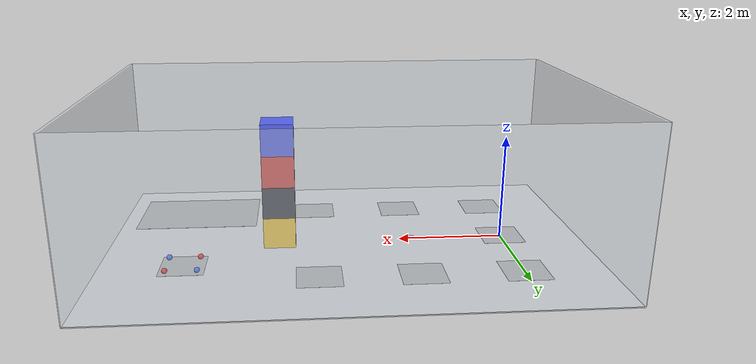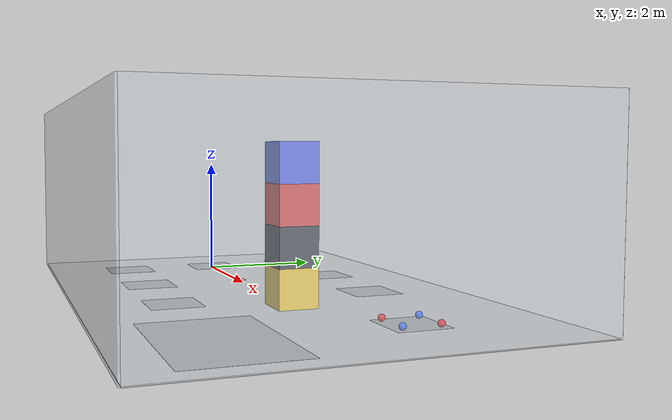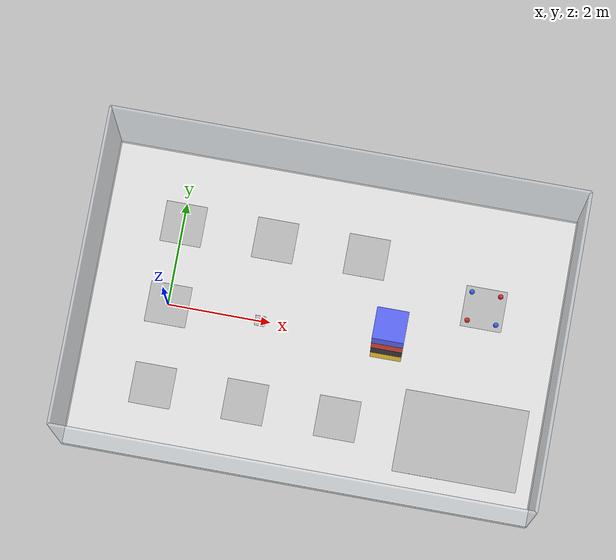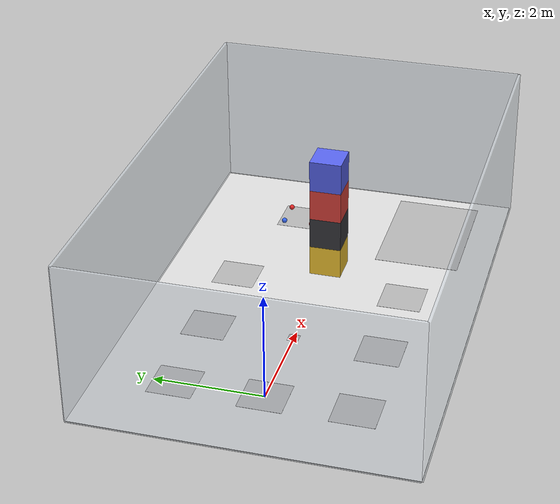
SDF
<?xml version='1.0'?>
<sdf version='1.7'>
  <model name='craic_2026_arena'>

    <model name='competition_floor'>
      <static>1</static>
      <pose>3 0 0.005 0 0 0</pose>
      <link name='link'>
        <collision name='collision'>
          <geometry>
            <box>
              <size>9 6 0.01</size>
            </box>
          </geometry>
          <surface>
            <contact><ode/></contact>
            <bounce/>
            <friction>
              <torsional><ode/></torsional>
              <ode/>
            </friction>
          </surface>
        </collision>
        <visual name='visual'>
          <geometry>
            <box>
              <size>9 6 0.01</size>
            </box>
          </geometry>
          <material>
            <ambient>0.88 0.88 0.88 1</ambient>
            <diffuse>0.88 0.88 0.88 1</diffuse>
            <specular>0.1 0.1 0.1 1</specular>
            <emissive>0 0 0 1</emissive>
          </material>
        </visual>
      </link>
    </model>
    <model name='north_wall'>
      <static>1</static>
      <pose>3 3 1.5 0 0 0</pose>
      <link name='link'>
        <collision name='collision'>
          <geometry>
            <box>
              <size>9 0.05 3</size>
            </box>
          </geometry>
          <surface>
            <contact><ode/></contact>
            <bounce/>
            <friction>
              <torsional><ode/></torsional>
              <ode/>
            </friction>
          </surface>
        </collision>
        <visual name='visual'>
          <geometry>
            <box>
              <size>9 0.05 3</size>
            </box>
          </geometry>
          <material>
            <ambient>0.8 0.85 0.9 0.35</ambient>
            <diffuse>0.8 0.85 0.9 0.35</diffuse>
            <specular>0.1 0.1 0.1 1</specular>
            <emissive>0 0 0 1</emissive>
          </material>
          <transparency>0.55</transparency>
        </visual>
      </link>
    </model>
    <model name='south_wall'>
      <static>1</static>
      <pose>3 -3 1.5 0 0 0</pose>
      <link name='link'>
        <collision name='collision'>
          <geometry>
            <box>
              <size>9 0.05 3</size>
            </box>
          </geometry>
          <surface>
            <contact><ode/></contact>
            <bounce/>
            <friction>
              <torsional><ode/></torsional>
              <ode/>
            </friction>
          </surface>
        </collision>
        <visual name='visual'>
          <geometry>
            <box>
              <size>9 0.05 3</size>
            </box>
          </geometry>
          <material>
            <ambient>0.8 0.85 0.9 0.35</ambient>
            <diffuse>0.8 0.85 0.9 0.35</diffuse>
            <specular>0.1 0.1 0.1 1</specular>
            <emissive>0 0 0 1</emissive>
          </material>
          <transparency>0.55</transparency>
        </visual>
      </link>
    </model>
    <model name='west_wall'>
      <static>1</static>
      <pose>-1.5 0 1.5 0 0 0</pose>
      <link name='link'>
        <collision name='collision'>
          <geometry>
            <box>
              <size>0.05 6 3</size>
            </box>
          </geometry>
          <surface>
            <contact><ode/></contact>
            <bounce/>
            <friction>
              <torsional><ode/></torsional>
              <ode/>
            </friction>
          </surface>
        </collision>
        <visual name='visual'>
          <geometry>
            <box>
              <size>0.05 6 3</size>
            </box>
          </geometry>
          <material>
            <ambient>0.8 0.85 0.9 0.35</ambient>
            <diffuse>0.8 0.85 0.9 0.35</diffuse>
            <specular>0.1 0.1 0.1 1</specular>
            <emissive>0 0 0 1</emissive>
          </material>
          <transparency>0.55</transparency>
        </visual>
      </link>
    </model>
    <model name='east_wall'>
      <static>1</static>
      <pose>7.5 0 1.5 0 0 0</pose>
      <link name='link'>
        <collision name='collision'>
          <geometry>
            <box>
              <size>0.05 6 3</size>
            </box>
          </geometry>
          <surface>
            <contact><ode/></contact>
            <bounce/>
            <friction>
              <torsional><ode/></torsional>
              <ode/>
            </friction>
          </surface>
        </collision>
        <visual name='visual'>
          <geometry>
            <box>
              <size>0.05 6 3</size>
            </box>
          </geometry>
          <material>
            <ambient>0.8 0.85 0.9 0.35</ambient>
            <diffuse>0.8 0.85 0.9 0.35</diffuse>
            <specular>0.1 0.1 0.1 1</specular>
            <emissive>0 0 0 1</emissive>
          </material>
          <transparency>0.55</transparency>
        </visual>
      </link>
    </model>
    <model name='obstacle_cube'>
      <static>1</static>
      <pose>4.3 0 0 0 0 0</pose>
      <link name='link'>

        <collision name='collision_0'>
          <pose>0 0 0.3 0 0 0</pose>
          <geometry>
            <box>
              <size>0.6 0.6 0.6</size>
            </box>
          </geometry>
          <surface>
            <contact><ode/></contact>
            <bounce/>
            <friction>
              <torsional><ode/></torsional>
              <ode/>
            </friction>
          </surface>
        </collision>
        <collision name='collision_1'>
          <pose>0 0 0.9 0 0 0</pose>
          <geometry>
            <box>
              <size>0.6 0.6 0.6</size>
            </box>
          </geometry>
          <surface>
            <contact><ode/></contact>
            <bounce/>
            <friction>
              <torsional><ode/></torsional>
              <ode/>
            </friction>
          </surface>
        </collision>
        <collision name='collision_2'>
          <pose>0 0 1.5 0 0 0</pose>
          <geometry>
            <box>
              <size>0.6 0.6 0.6</size>
            </box>
          </geometry>
          <surface>
            <contact><ode/></contact>
            <bounce/>
            <friction>
              <torsional><ode/></torsional>
              <ode/>
            </friction>
          </surface>
        </collision>
        <collision name='collision_3'>
          <pose>0 0 2.1 0 0 0</pose>
          <geometry>
            <box>
              <size>0.6 0.6 0.6</size>
            </box>
          </geometry>
          <surface>
            <contact><ode/></contact>
            <bounce/>
            <friction>
              <torsional><ode/></torsional>
              <ode/>
            </friction>
          </surface>
        </collision>
        <visual name='segment_0'>
          <pose>0 0 0.3 0 0 0</pose>
          <geometry>
            <box>
              <size>0.6 0.6 0.6</size>
            </box>
          </geometry>
          <material>
            <ambient>0.98 0.8 0.2 1</ambient>
            <diffuse>0.98 0.8 0.2 1</diffuse>
            <specular>0.18 0.18 0.18 1</specular>
            <emissive>0 0 0 1</emissive>
          </material>
        </visual>
        <visual name='segment_1'>
          <pose>0 0 0.9 0 0 0</pose>
          <geometry>
            <box>
              <size>0.6 0.6 0.6</size>
            </box>
          </geometry>
          <material>
            <ambient>0.22 0.22 0.24 1</ambient>
            <diffuse>0.22 0.22 0.24 1</diffuse>
            <specular>0.18 0.18 0.18 1</specular>
            <emissive>0 0 0 1</emissive>
          </material>
        </visual>
        <visual name='segment_2'>
          <pose>0 0 1.5 0 0 0</pose>
          <geometry>
            <box>
              <size>0.6 0.6 0.6</size>
            </box>
          </geometry>
          <material>
            <ambient>0.88 0.27 0.24 1</ambient>
            <diffuse>0.88 0.27 0.24 1</diffuse>
            <specular>0.18 0.18 0.18 1</specular>
            <emissive>0 0 0 1</emissive>
          </material>
        </visual>
        <visual name='segment_3'>
          <pose>0 0 2.1 0 0 0</pose>
          <geometry>
            <box>
              <size>0.6 0.6 0.6</size>
            </box>
          </geometry>
          <material>
            <ambient>0.35 0.4 0.95 1</ambient>
            <diffuse>0.35 0.4 0.95 1</diffuse>
            <specular>0.18 0.18 0.18 1</specular>
            <emissive>0 0 0 1</emissive>
          </material>
        </visual>
      </link>
    </model>

    <link name='ring_movement_zone'>
      <pose>6 -1.6 0 0 0 0</pose>
      <visual name='visual'>
        <pose>0 0 0.021 0 0 0</pose>
        <geometry>
          <plane>
            <normal>0 0 1</normal>
            <size>2.4 1.6</size>
          </plane>
        </geometry>
          <material>
            <script>
              <uri>model://craic_2026_arena/materials/scripts</uri>
              <uri>model://craic_2026_arena/materials/textures</uri>
              <name>CRAIC/ZoneOverlay</name>
            </script>
          </material>
      </visual>
    </link>
    <link name='takeoff_pad'>
      <pose>0 0 0 0 0 -1.570796</pose>
      <collision name='collision'>
        <pose>0 0 0.01 0 0 0</pose>
        <geometry>
          <box>
            <size>0.8 0.8 0.02</size>
          </box>
        </geometry>
      </collision>
      <visual name='marker_visual'>
        <pose>0 0 0.022 0 0 0</pose>
        <geometry>
          <plane>
            <normal>0 0 1</normal>
            <size>0.8 0.8</size>
          </plane>
        </geometry>
          <material>
            <script>
              <uri>model://craic_2026_arena/materials/scripts</uri>
              <uri>model://craic_2026_arena/materials/textures</uri>
              <name>CRAIC/TakeoffPad</name>
            </script>
          </material>
      </visual>
    </link>
    <link name='landing_right_pad'>
      <pose>0 -1.6 0 0 0 -1.570796</pose>
      <collision name='collision'>
        <pose>0 0 0.01 0 0 0</pose>
        <geometry>
          <box>
            <size>0.8 0.8 0.02</size>
          </box>
        </geometry>
      </collision>
      <visual name='marker_visual'>
        <pose>0 0 0.022 0 0 0</pose>
        <geometry>
          <plane>
            <normal>0 0 1</normal>
            <size>0.8 0.8</size>
          </plane>
        </geometry>
          <material>
            <script>
              <uri>model://craic_2026_arena/materials/scripts</uri>
              <uri>model://craic_2026_arena/materials/textures</uri>
              <name>CRAIC/LandingRight</name>
            </script>
          </material>
      </visual>
    </link>
    <link name='landing_left_pad'>
      <pose>0 1.6 0 0 0 -1.570796</pose>
      <collision name='collision'>
        <pose>0 0 0.01 0 0 0</pose>
        <geometry>
          <box>
            <size>0.8 0.8 0.02</size>
          </box>
        </geometry>
      </collision>
      <visual name='marker_visual'>
        <pose>0 0 0.022 0 0 0</pose>
        <geometry>
          <plane>
            <normal>0 0 1</normal>
            <size>0.8 0.8</size>
          </plane>
        </geometry>
          <material>
            <script>
              <uri>model://craic_2026_arena/materials/scripts</uri>
              <uri>model://craic_2026_arena/materials/textures</uri>
              <name>CRAIC/LandingLeft</name>
            </script>
          </material>
      </visual>
    </link>
    <link name='qr_code_marker'>
      <pose>1.8 0 0 0 0 0</pose>
      <collision name='collision'>
        <pose>0 0 0.01 0 0 0</pose>
        <geometry>
          <box>
            <size>0.2 0.2 0.02</size>
          </box>
        </geometry>
      </collision>
      <visual name='marker_visual'>
        <pose>0 0 0.023 0 0 0</pose>
        <geometry>
          <plane>
            <normal>0 0 1</normal>
            <size>0.2 0.2</size>
          </plane>
        </geometry>
          <material>
            <script>
              <uri>model://craic_2026_arena/materials/scripts</uri>
              <uri>model://craic_2026_arena/materials/textures</uri>
              <name>CRAIC/QRCode</name>
            </script>
          </material>
      </visual>
    </link>
    <link name='target_top_left'>
      <pose>3.6 -1.6 0 0 0 0</pose>
      <collision name='collision'>
        <pose>0 0 0.01 0 0 0</pose>
        <geometry>
          <box>
            <size>0.8 0.8 0.02</size>
          </box>
        </geometry>
      </collision>
      <visual name='marker_visual'>
        <pose>0 0 0.022 0 0 0</pose>
        <geometry>
          <plane>
            <normal>0 0 1</normal>
            <size>0.8 0.8</size>
          </plane>
        </geometry>
          <material>
            <script>
              <uri>model://craic_2026_arena/materials/scripts</uri>
              <uri>model://craic_2026_arena/materials/textures</uri>
              <name>CRAIC/TargetTopLeft</name>
            </script>
          </material>
      </visual>
    </link>
    <link name='target_top_right'>
      <pose>1.8 -1.6 0 0 0 0</pose>
      <collision name='collision'>
        <pose>0 0 0.01 0 0 0</pose>
        <geometry>
          <box>
            <size>0.8 0.8 0.02</size>
          </box>
        </geometry>
      </collision>
      <visual name='marker_visual'>
        <pose>0 0 0.022 0 0 0</pose>
        <geometry>
          <plane>
            <normal>0 0 1</normal>
            <size>0.8 0.8</size>
          </plane>
        </geometry>
          <material>
            <script>
              <uri>model://craic_2026_arena/materials/scripts</uri>
              <uri>model://craic_2026_arena/materials/textures</uri>
              <name>CRAIC/TargetTopRight</name>
            </script>
          </material>
      </visual>
    </link>
    <link name='target_bottom_left'>
      <pose>3.6 1.6 0 0 0 0</pose>
      <collision name='collision'>
        <pose>0 0 0.01 0 0 0</pose>
        <geometry>
          <box>
            <size>0.8 0.8 0.02</size>
          </box>
        </geometry>
      </collision>
      <visual name='marker_visual'>
        <pose>0 0 0.022 0 0 0</pose>
        <geometry>
          <plane>
            <normal>0 0 1</normal>
            <size>0.8 0.8</size>
          </plane>
        </geometry>
          <material>
            <script>
              <uri>model://craic_2026_arena/materials/scripts</uri>
              <uri>model://craic_2026_arena/materials/textures</uri>
              <name>CRAIC/TargetBottomLeft</name>
            </script>
          </material>
      </visual>
    </link>
    <link name='target_bottom_right'>
      <pose>1.8 1.6 0 0 0 0</pose>
      <collision name='collision'>
        <pose>0 0 0.01 0 0 0</pose>
        <geometry>
          <box>
            <size>0.8 0.8 0.02</size>
          </box>
        </geometry>
      </collision>
      <visual name='marker_visual'>
        <pose>0 0 0.022 0 0 0</pose>
        <geometry>
          <plane>
            <normal>0 0 1</normal>
            <size>0.8 0.8</size>
          </plane>
        </geometry>
          <material>
            <script>
              <uri>model://craic_2026_arena/materials/scripts</uri>
              <uri>model://craic_2026_arena/materials/textures</uri>
              <name>CRAIC/TargetBottomRight</name>
            </script>
          </material>
      </visual>
    </link>
    <link name='special_target'>
      <pose>6 1 0 0 0 0</pose>
      <collision name='collision'>
        <pose>0 0 0.01 0 0 0</pose>
        <geometry>
          <box>
            <size>0.8 0.8 0.02</size>
          </box>
        </geometry>
      </collision>
      <visual name='marker_visual'>
        <pose>0 0 0.022 0 0 0</pose>
        <geometry>
          <plane>
            <normal>0 0 1</normal>
            <size>0.8 0.8</size>
          </plane>
        </geometry>
          <material>
            <script>
              <uri>model://craic_2026_arena/materials/scripts</uri>
              <uri>model://craic_2026_arena/materials/textures</uri>
              <name>CRAIC/SpecialTarget</name>
            </script>
          </material>
      </visual>
      <visual name='light_red_1'>
        <pose>-0.28 -0.28 0.07 0 0 0</pose>
        <geometry>
          <sphere>
            <radius>0.05</radius>
          </sphere>
        </geometry>
          <material>
            <ambient>0.9 0.15 0.15 1</ambient>
            <diffuse>0.9 0.15 0.15 1</diffuse>
            <specular>0.1 0.1 0.1 1</specular>
            <emissive>0.6 0.05 0.05 1</emissive>
          </material>
      </visual>
      <visual name='light_blue_1'>
        <pose>-0.28 0.28 0.07 0 0 0</pose>
        <geometry>
          <sphere>
            <radius>0.05</radius>
          </sphere>
        </geometry>
          <material>
            <ambient>0.2 0.4 0.95 1</ambient>
            <diffuse>0.2 0.4 0.95 1</diffuse>
            <specular>0.1 0.1 0.1 1</specular>
            <emissive>0.05 0.15 0.6 1</emissive>
          </material>
      </visual>
      <visual name='light_red_2'>
        <pose>0.28 0.28 0.07 0 0 0</pose>
        <geometry>
          <sphere>
            <radius>0.05</radius>
          </sphere>
        </geometry>
          <material>
            <ambient>0.9 0.15 0.15 1</ambient>
            <diffuse>0.9 0.15 0.15 1</diffuse>
            <specular>0.1 0.1 0.1 1</specular>
            <emissive>0.6 0.05 0.05 1</emissive>
          </material>
      </visual>
      <visual name='light_blue_2'>
        <pose>0.28 -0.28 0.07 0 0 0</pose>
        <geometry>
          <sphere>
            <radius>0.05</radius>
          </sphere>
        </geometry>
          <material>
            <ambient>0.2 0.4 0.95 1</ambient>
            <diffuse>0.2 0.4 0.95 1</diffuse>
            <specular>0.1 0.1 0.1 1</specular>
            <emissive>0.05 0.15 0.6 1</emissive>
          </material>
      </visual>
    </link>
  </model>
</sdf>
